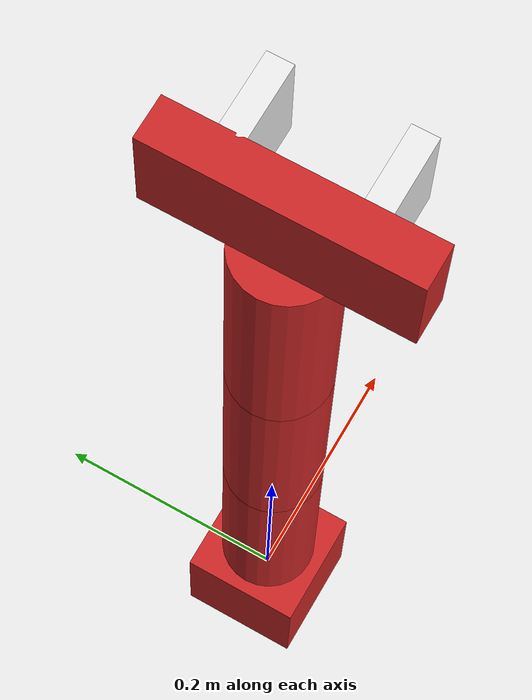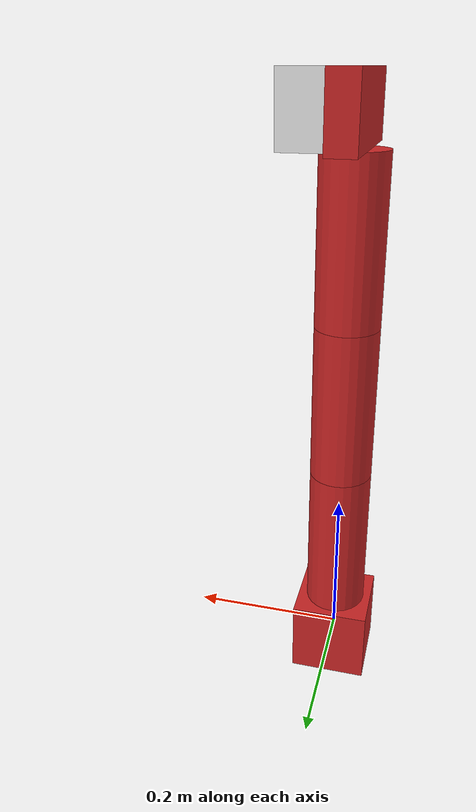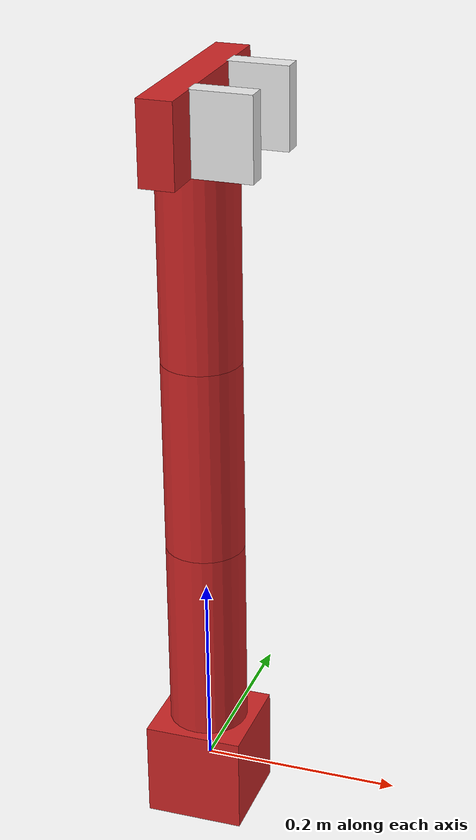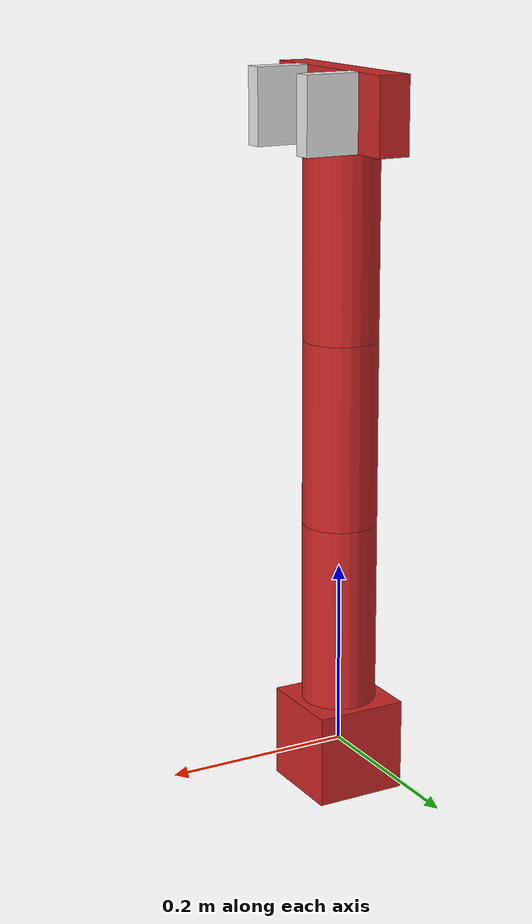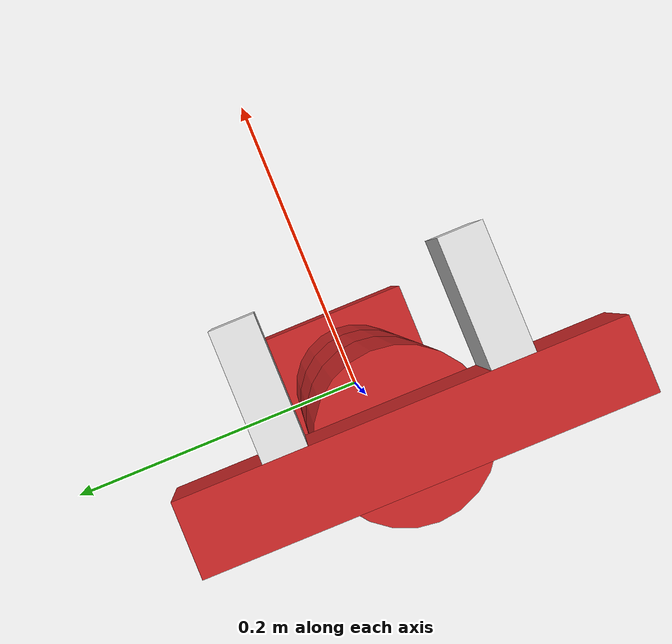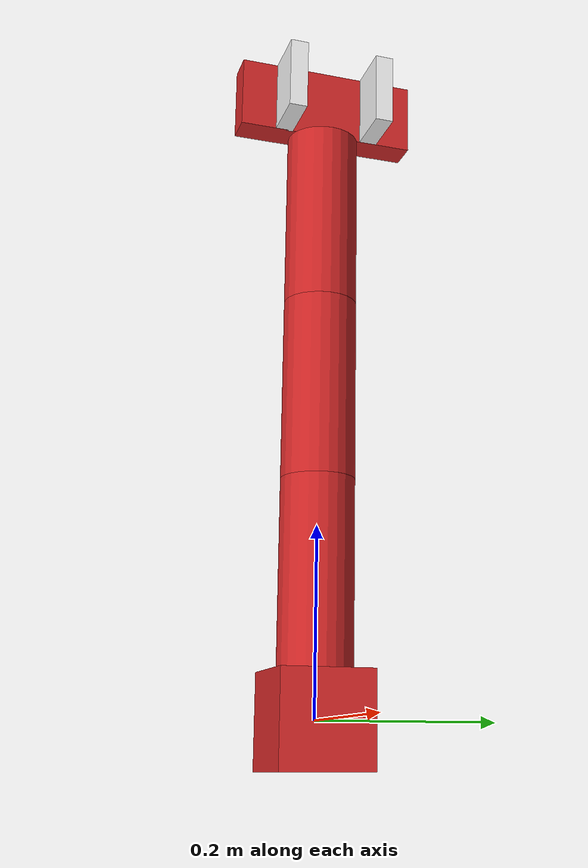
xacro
<?xml version="1.0" ?>
<robot name="robot" xmlns:xacro="http://www.ros.org/wiki/xacro">

<xacro:property name="arm_01_len" value="0.2" />
<xacro:property name="arm_01_mass" value="0.025" />
<xacro:property name="arm_02_len" value="0.2" />
<xacro:property name="arm_02_mass" value="0.025" />
<xacro:property name="arm_03_len" value="0.2" />
<xacro:property name="arm_03_mass" value="0.025" />
<xacro:property name="arm_04_len" value="0.25" />
<xacro:property name="arm_04_mass" value="0.025" />
<xacro:property name="offset" value="0" />

<!-- base link of the manipulator -->
<link name="arm_base_link">
	<origin
		xyz="0 0 0"
		rpy="0 0 0" />

	<inertial>
		<mass value="0.1"/>
  		<origin xyz="0 0 0" rpy="0 0 0" />
  		<inertia
			ixx="0.0000416666667" iyy="0.0000416666667" izz="0.0000416666667"
			iyz="0" ixy="0" ixz="0" />
	</inertial>

  	<collision>
		<origin xyz="0 0 0" rpy="0 0 0"/>
		<geometry>
			<box size="0.1 0.1 0.1"/>
		</geometry>
  	</collision>

  	<visual>
		<origin xyz="0 0 0" rpy="0 0 0"/>
		<geometry>
			<box size="0.1 0.1 0.1"/>
		</geometry>
		<material name="red" />
  	</visual>
</link>
<!-- base link of the manipulator -->

<!-- first link of the manipulator -->
<joint name="arm_joint_01" type="revolute">
	<parent link="arm_base_link"/>
	<child link="arm_link_01"/>
	<origin rpy="0 0 0" xyz="0 0 ${0.05 + offset}"/>

	<axis xyz="0 0 1"/>
	<limit effort="1000000.0" lower="-3.12" upper="3.139" velocity="5"/>
</joint>

<link name="arm_link_01">
	<origin
		xyz="0 0 0"
		rpy="0 0 0" />

	<inertial>
		<origin xyz="0 0 ${arm_01_len/2}" rpy="0 0 0" />
		<mass value="${arm_01_mass}"/>
		<xacro:cylinder_inertia mass="${arm_01_mass}" r="0.04" l="${arm_01_len}" />
	</inertial>

	<collision>
		<origin xyz="0 0 ${arm_01_len/2}" rpy="0 0 0"/>
		<geometry>
			<cylinder radius="0.04" length="${arm_01_len}"/>
		</geometry>
	</collision>

	<visual>
		<origin xyz="0 0 ${arm_01_len/2}" rpy="0 0 0"/>
		<geometry>
			<cylinder radius="0.04" length="${arm_01_len}"/>
		</geometry>
		<material name="red" />
	</visual>
</link>
<!-- first link of the manipulator -->

<!-- second link of the manipulator -->
<joint name="arm_joint_02" type="revolute">
	<parent link="arm_link_01"/>
	<child link="arm_link_02"/>
	<origin rpy="0 0 0" xyz="0 0 ${arm_01_len + offset}"/>
	<axis xyz="0 1 0"/>
	<limit effort="1000000.0" lower="-1.8" upper="1.8" velocity="5"/>
</joint>

<link name="arm_link_02">
	<origin
		xyz="0 0 0"
		rpy="0 0 0" />

	<inertial>
		<origin xyz="0 0 ${arm_02_len/2}" rpy="0 0 0" />
		<mass value="${arm_02_mass}"/>
		<xacro:cylinder_inertia mass="${arm_02_mass}" r="0.04" l="${arm_02_len}" />
	</inertial>

	<collision>
		<origin xyz="0 0 ${arm_02_len/2}" rpy="0 0 0"/>
		<geometry>
			<cylinder radius="0.04" length="${arm_02_len}"/>
		</geometry>
	</collision>

	<visual>
		<origin xyz="0 0 ${arm_02_len/2}" rpy="0 0 0"/>
		<geometry>
			<cylinder radius="0.04" length="${arm_02_len}"/>
		</geometry>
		<material name="red" />
	</visual>
</link>
<!-- second link of the manipulator -->

<!-- third link of the manipulator -->
<joint name="arm_joint_03" type="revolute">
	<parent link="arm_link_02"/>
	<child link="arm_link_03"/>
	<origin rpy="0 0 0" xyz="0 0 ${arm_02_len + offset}"/>
	<axis xyz="0 1 0"/>
	<limit effort="1000000.0" lower="-1.8" upper="1.8" velocity="5"/>
</joint>

<link name="arm_link_03">
	<origin
		xyz="0 0 0"
		rpy="0 0 0" />

	<inertial>
		<origin xyz="0 0 ${arm_03_len/2}" rpy="0 0 0" />
		<mass value="${arm_03_mass}"/>
		<xacro:cylinder_inertia mass="${arm_03_mass}" r="0.04" l="${arm_03_len}" />
	</inertial>

	<collision>
		<origin xyz="0 0 ${arm_03_len/2}" rpy="0 0 0"/>
		<geometry>
			<cylinder radius="0.04" length="${arm_03_len}"/>
		</geometry>
	</collision>

	<visual>
		<origin xyz="0 0 ${arm_03_len/2}" rpy="0 0 0"/>
		<geometry>
			<cylinder radius="0.04" length="${arm_03_len}"/>
		</geometry>
		<material name="red" />
	</visual>
</link>
<!-- third link of the manipulator -->

<!-- last link of the manipulator, base gripper -->
<joint name="arm_joint_04" type="revolute">
	<parent link="arm_link_03"/>
	<child link="cluedo_link"/>
	<origin rpy="0 0 0" xyz="0 0 ${arm_03_len + offset}"/>
	<axis xyz="0 1 0"/>
	<limit effort="10000000.0" lower="-1.8" upper="1.8" velocity="5"/>
</joint>

<link name="cluedo_link">
	<origin
		xyz="0 0 0"
		rpy="0 0 0" />

	<inertial>
		<origin xyz="0 0 0.04" rpy="0 0 0" />
		<mass value="${arm_04_mass}"/>
		<inertia
			ixx="0.000010279" iyy="0.000010279" izz="0.000007225"
			ixy="0" ixz="0" iyz="0"/>
	</inertial>

	<collision>
		<origin xyz="0 0 0.04" rpy="0 0 0"/>
		<geometry>
			<box size="0.034 0.2 0.08"/>
		</geometry>
	</collision>

	<visual>
		<origin xyz="0 0 0.04" rpy="0 0 0"/>
		<geometry>
			<box size="0.034 0.2 0.08"/>
		</geometry>
		<material name="red" />
	</visual>
</link>
-->
<!-- last link of the manipulator, base gripper -->

<!-- right gripper -->
<joint name="right_grip_joint" type="prismatic">
	<parent link="cluedo_link"/>
	<child link="right_grip_link"/>
	<origin rpy="0 0 0" xyz="${0.015 + 0.03} 0.05 0.04"/>
	<axis xyz="0 1 0"/>
	<limit effort="1000000.0" lower="-0.04" upper="0.035" velocity="6.5"/>
</joint>

<link name="right_grip_link">
	<origin
		xyz="0 0 0"
		rpy="0 0 0" />

	<inertial>
		<mass value="0.01"/>
		<origin xyz="0 0 0" rpy="0 0 0" />
		<inertia ixx="0.000010279" ixy="0" ixz="0" iyy="0.000010279" iyz="0" izz="0.000007225"/>
	</inertial>

	<collision>
		<origin rpy="0 0 0" xyz="0 0 0"/>
		<geometry>
			<box size="0.06 0.02 0.08"/>
		</geometry>
	</collision>

  	<visual>
		<origin rpy="0 0 0" xyz="0 0 0"/>
		<geometry>
			<box size="0.06 0.02 0.08"/>
		</geometry>
		<material name="white" />
  	</visual>
</link>
<!-- right gripper -->

<!-- left gripper -->
<joint name="left_grip_joint" type="prismatic">
	<parent link="cluedo_link"/>
	<child link="left_grip_link"/>
	<origin rpy="0 0 0" xyz="${0.015 + 0.03} -0.05 0.04"/>
	<axis xyz="0 1 0"/>
	<limit effort="1000000.0" upper="0.04" lower="-0.035" velocity="6.5"/>
</joint>

<link name="left_grip_link">
	<origin
		xyz="0 0 0"
		rpy="0 0 0" />

  	<inertial>
		<mass value="0.01"/>
		<origin xyz="0 0 0" rpy="0 0 0" />
		<inertia ixx="0.000010279" ixy="0" ixz="0" iyy="0.000010279" iyz="0" izz="0.000007225"/>
  	</inertial>

  	<collision>
		<origin rpy="0 0 0" xyz="0 0 0"/>
		<geometry>
			<box size="0.06 0.02 0.08"/>
		</geometry>
  	</collision>

  	<visual>
		<origin rpy="0 0 0" xyz="0 0 0"/>
		<geometry>
			<box size="0.06 0.02 0.08"/>
		</geometry>
		<material name="white" />
  	</visual>
</link>
<!-- left gripper -->

</robot>
